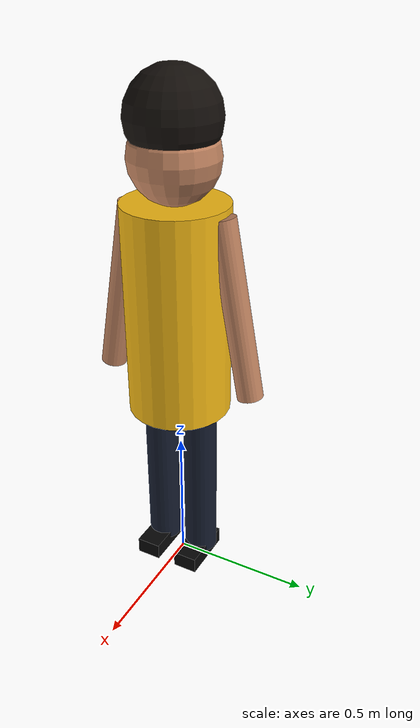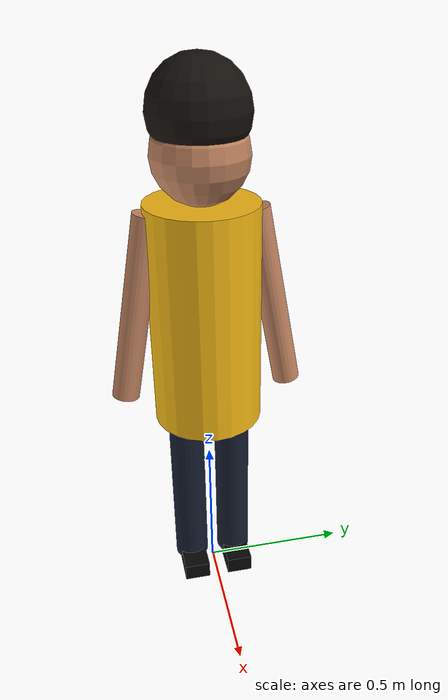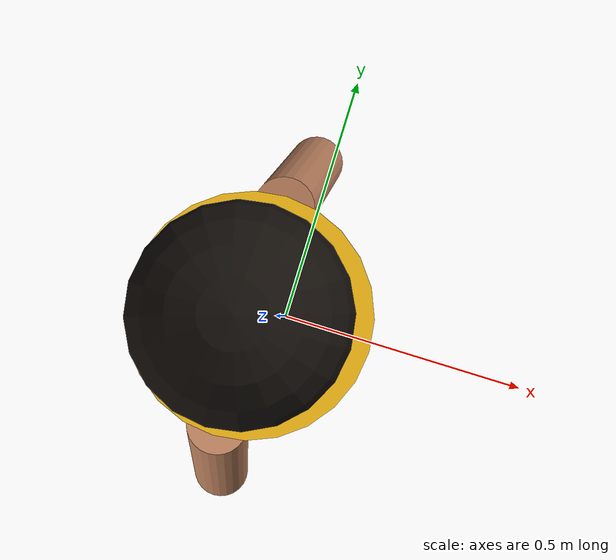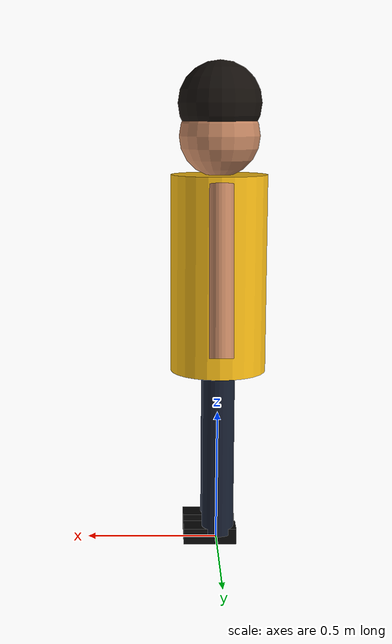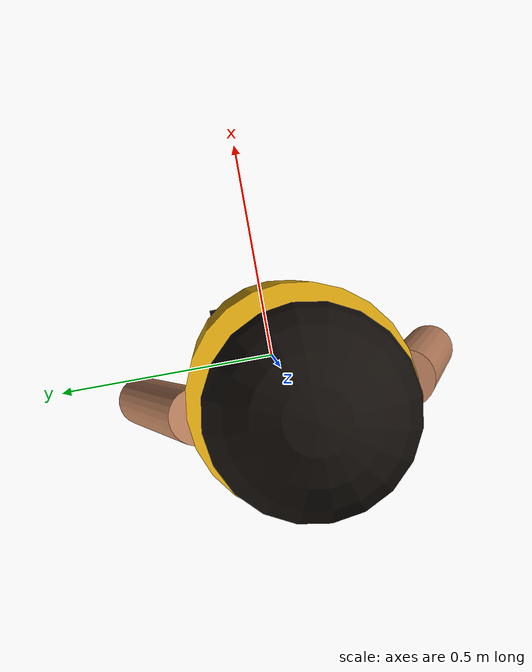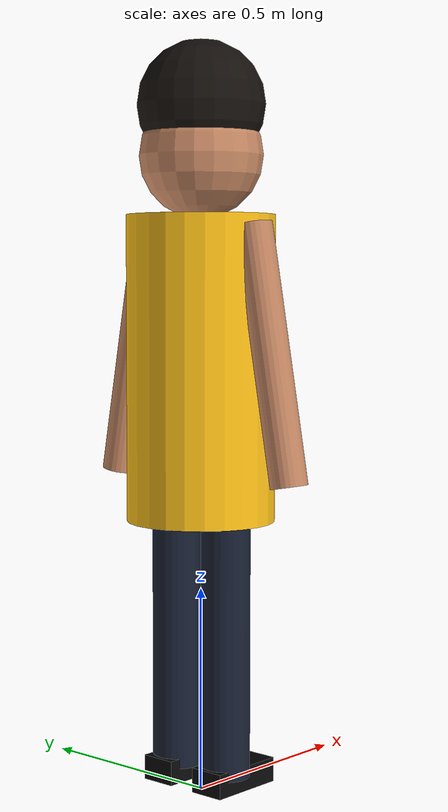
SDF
<?xml version="1.0" ?>
<sdf version="1.10">
  <model name="person_proxy_yellow">
    <static>true</static>

    <link name="torso">
      <pose>0 0 1.04 0 0 0</pose>
      <collision name="collision">
        <geometry><cylinder><radius>0.18</radius><length>0.74</length></cylinder></geometry>
      </collision>
      <visual name="visual">
        <geometry><cylinder><radius>0.18</radius><length>0.74</length></cylinder></geometry>
        <material>
          <ambient>0.78 0.58 0.04 1</ambient>
          <diffuse>0.95 0.72 0.08 1</diffuse>
          <specular>0.18 0.14 0.04 1</specular>
        </material>
      </visual>
    </link>
    <link name="head">
      <pose>0 0 1.55 0 0 0</pose>
      <collision name="collision">
        <geometry><sphere><radius>0.15</radius></sphere></geometry>
      </collision>
      <visual name="visual">
        <geometry><sphere><radius>0.15</radius></sphere></geometry>
        <material>
          <ambient>0.72 0.48 0.34 1</ambient>
          <diffuse>0.76 0.52 0.38 1</diffuse>
          <specular>0.12 0.08 0.06 1</specular>
        </material>
      </visual>
    </link>
    <link name="hair">
      <pose>0 0 1.67 0 0 0</pose>
      <visual name="visual">
        <geometry><sphere><radius>0.155</radius></sphere></geometry>
        <material>
          <ambient>0.06 0.045 0.035 1</ambient>
          <diffuse>0.08 0.06 0.045 1</diffuse>
          <specular>0.04 0.03 0.02 1</specular>
        </material>
      </visual>
    </link>
    <link name="left_arm">
      <pose>0 0.22 1.08 0.18 0 0</pose>
      <collision name="collision">
        <geometry><cylinder><radius>0.045</radius><length>0.62</length></cylinder></geometry>
      </collision>
      <visual name="visual">
        <geometry><cylinder><radius>0.045</radius><length>0.62</length></cylinder></geometry>
        <material>
          <ambient>0.72 0.48 0.34 1</ambient>
          <diffuse>0.76 0.52 0.38 1</diffuse>
          <specular>0.12 0.08 0.06 1</specular>
        </material>
      </visual>
    </link>
    <link name="right_arm">
      <pose>0 -0.22 1.08 -0.18 0 0</pose>
      <collision name="collision">
        <geometry><cylinder><radius>0.045</radius><length>0.62</length></cylinder></geometry>
      </collision>
      <visual name="visual">
        <geometry><cylinder><radius>0.045</radius><length>0.62</length></cylinder></geometry>
        <material>
          <ambient>0.72 0.48 0.34 1</ambient>
          <diffuse>0.76 0.52 0.38 1</diffuse>
          <specular>0.12 0.08 0.06 1</specular>
        </material>
      </visual>
    </link>
    <link name="left_leg">
      <pose>0 0.08 0.46 0 0 0</pose>
      <collision name="collision">
        <geometry><cylinder><radius>0.06</radius><length>0.82</length></cylinder></geometry>
      </collision>
      <visual name="visual">
        <geometry><cylinder><radius>0.06</radius><length>0.82</length></cylinder></geometry>
        <material>
          <ambient>0.06 0.08 0.13 1</ambient>
          <diffuse>0.08 0.11 0.18 1</diffuse>
          <specular>0.10 0.10 0.12 1</specular>
        </material>
      </visual>
    </link>
    <link name="right_leg">
      <pose>0 -0.08 0.46 0 0 0</pose>
      <collision name="collision">
        <geometry><cylinder><radius>0.06</radius><length>0.82</length></cylinder></geometry>
      </collision>
      <visual name="visual">
        <geometry><cylinder><radius>0.06</radius><length>0.82</length></cylinder></geometry>
        <material>
          <ambient>0.06 0.08 0.13 1</ambient>
          <diffuse>0.08 0.11 0.18 1</diffuse>
          <specular>0.10 0.10 0.12 1</specular>
        </material>
      </visual>
    </link>
    <link name="left_shoe">
      <pose>0.03 0.08 0.045 0 0 0</pose>
      <collision name="collision">
        <geometry><box><size>0.2 0.09 0.06</size></box></geometry>
      </collision>
      <visual name="visual">
        <geometry><box><size>0.2 0.09 0.06</size></box></geometry>
        <material>
          <ambient>0.02 0.02 0.02 1</ambient>
          <diffuse>0.03 0.03 0.03 1</diffuse>
          <specular>0.05 0.05 0.05 1</specular>
        </material>
      </visual>
    </link>
    <link name="right_shoe">
      <pose>0.03 -0.08 0.045 0 0 0</pose>
      <collision name="collision">
        <geometry><box><size>0.2 0.09 0.06</size></box></geometry>
      </collision>
      <visual name="visual">
        <geometry><box><size>0.2 0.09 0.06</size></box></geometry>
        <material>
          <ambient>0.02 0.02 0.02 1</ambient>
          <diffuse>0.03 0.03 0.03 1</diffuse>
          <specular>0.05 0.05 0.05 1</specular>
        </material>
      </visual>
    </link>
  </model>
</sdf>
